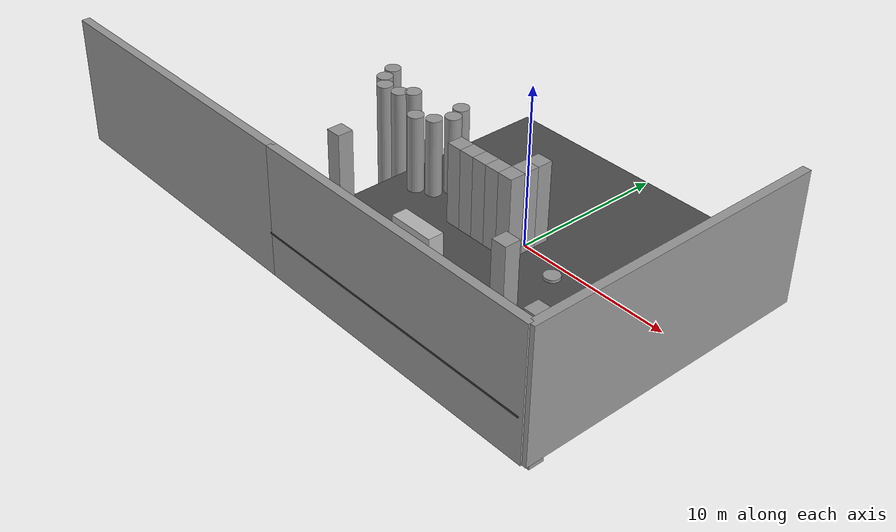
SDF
<sdf version="1.6">
 <model name="MW_world_1_0_0">
  <link name="link_0_0_clone_5_clone_2">
   <pose>-13.4901 1.7321 0.5 0 -0 0</pose>
   <inertial>
    <mass>9.05819</mass>
    <inertia><ixx>62.5018</ixx><ixy>0</ixy><ixz>0</ixz><iyy>62.5018</iyy><iyz>0</iyz><izz>1.13227</izz></inertia>
   </inertial>
   <visual name="visual_0">
    <geometry><cylinder><radius>0.5</radius><length>9.05819</length></cylinder></geometry>
    <material>
     <lighting>1</lighting>
     <script><uri>file://media/materials/scripts/gazebo.material</uri><name>Gazebo/Grey</name></script>
     <ambient>0.3 0.3 0.3 1</ambient>
     <diffuse>0.7 0.7 0.7 1</diffuse>
     <specular>0.01 0.01 0.01 1</specular>
     <emissive>0 0 0 1</emissive>
     <shader type="pixel"/>
    </material>
   </visual>
   <collision name="collision">
    <geometry><cylinder><radius>0.5</radius><length>9.05819</length></cylinder></geometry>
    <surface>
     <friction>
      <ode><mu>1</mu><mu2>1</mu2><fdir1>0 0 0</fdir1><slip1>0</slip1><slip2>0</slip2></ode>
      <torsional>
       <coefficient>1</coefficient>
       <patch_radius>0</patch_radius>
       <surface_radius>0</surface_radius>
       <use_patch_radius>1</use_patch_radius>
       <ode><slip>0</slip></ode>
      </torsional>
     </friction>
     <bounce><restitution_coefficient>0</restitution_coefficient><threshold>1e+06</threshold></bounce>
     <contact>
      <collide_without_contact>0</collide_without_contact>
      <collide_without_contact_bitmask>1</collide_without_contact_bitmask>
      <collide_bitmask>1</collide_bitmask>
      <ode>
       <soft_cfm>0</soft_cfm>
       <soft_erp>0.2</soft_erp>
       <kp>1e+13</kp>
       <kd>1</kd>
       <max_vel>0.01</max_vel>
       <min_depth>0</min_depth>
      </ode>
      <bullet>
       <split_impulse>1</split_impulse>
       <split_impulse_penetration_threshold>-0.01</split_impulse_penetration_threshold>
       <soft_cfm>0</soft_cfm>
       <soft_erp>0.2</soft_erp>
       <kp>1e+13</kp>
       <kd>1</kd>
      </bullet>
     </contact>
    </surface>
   </collision>
  </link>
  <link name="link_0_0_clone_5_clone_2_clone">
   <pose>-13.0181 0.7321 0.5 0 -0 0</pose>
   <inertial>
    <mass>9.05819</mass>
    <inertia><ixx>62.5018</ixx><ixy>0</ixy><ixz>0</ixz><iyy>62.5018</iyy><iyz>0</iyz><izz>1.13227</izz></inertia>
   </inertial>
   <visual name="visual_0">
    <geometry><cylinder><radius>0.5</radius><length>9.05819</length></cylinder></geometry>
    <material>
     <lighting>1</lighting>
     <script><uri>file://media/materials/scripts/gazebo.material</uri><name>Gazebo/Grey</name></script>
     <ambient>0.3 0.3 0.3 1</ambient>
     <diffuse>0.7 0.7 0.7 1</diffuse>
     <specular>0.01 0.01 0.01 1</specular>
     <emissive>0 0 0 1</emissive>
     <shader type="pixel"/>
    </material>
   </visual>
   <collision name="collision">
    <geometry><cylinder><radius>0.5</radius><length>9.05819</length></cylinder></geometry>
    <surface>
     <friction>
      <ode><mu>1</mu><mu2>1</mu2><fdir1>0 0 0</fdir1><slip1>0</slip1><slip2>0</slip2></ode>
      <torsional>
       <coefficient>1</coefficient>
       <patch_radius>0</patch_radius>
       <surface_radius>0</surface_radius>
       <use_patch_radius>1</use_patch_radius>
       <ode><slip>0</slip></ode>
      </torsional>
     </friction>
     <bounce><restitution_coefficient>0</restitution_coefficient><threshold>1e+06</threshold></bounce>
     <contact>
      <collide_without_contact>0</collide_without_contact>
      <collide_without_contact_bitmask>1</collide_without_contact_bitmask>
      <collide_bitmask>1</collide_bitmask>
      <ode>
       <soft_cfm>0</soft_cfm>
       <soft_erp>0.2</soft_erp>
       <kp>1e+13</kp>
       <kd>1</kd>
       <max_vel>0.01</max_vel>
       <min_depth>0</min_depth>
      </ode>
      <bullet>
       <split_impulse>1</split_impulse>
       <split_impulse_penetration_threshold>-0.01</split_impulse_penetration_threshold>
       <soft_cfm>0</soft_cfm>
       <soft_erp>0.2</soft_erp>
       <kp>1e+13</kp>
       <kd>1</kd>
      </bullet>
     </contact>
    </surface>
   </collision>
  </link>
  <link name="link_0_0_clone_5_clone_2_clone_1">
   <pose>-11.0181 0.183167 0.5 0 -0 0</pose>
   <inertial>
    <mass>9.05819</mass>
    <inertia><ixx>62.5018</ixx><ixy>0</ixy><ixz>0</ixz><iyy>62.5018</iyy><iyz>0</iyz><izz>1.13227</izz></inertia>
   </inertial>
   <visual name="visual_0">
    <geometry><cylinder><radius>0.5</radius><length>9.05819</length></cylinder></geometry>
    <material>
     <lighting>1</lighting>
     <script><uri>file://media/materials/scripts/gazebo.material</uri><name>Gazebo/Grey</name></script>
     <ambient>0.3 0.3 0.3 1</ambient>
     <diffuse>0.7 0.7 0.7 1</diffuse>
     <specular>0.01 0.01 0.01 1</specular>
     <emissive>0 0 0 1</emissive>
     <shader type="pixel"/>
    </material>
   </visual>
   <collision name="collision">
    <geometry><cylinder><radius>0.5</radius><length>9.05819</length></cylinder></geometry>
    <surface>
     <friction>
      <ode><mu>1</mu><mu2>1</mu2><fdir1>0 0 0</fdir1><slip1>0</slip1><slip2>0</slip2></ode>
      <torsional>
       <coefficient>1</coefficient>
       <patch_radius>0</patch_radius>
       <surface_radius>0</surface_radius>
       <use_patch_radius>1</use_patch_radius>
       <ode><slip>0</slip></ode>
      </torsional>
     </friction>
     <bounce><restitution_coefficient>0</restitution_coefficient><threshold>1e+06</threshold></bounce>
     <contact>
      <collide_without_contact>0</collide_without_contact>
      <collide_without_contact_bitmask>1</collide_without_contact_bitmask>
      <collide_bitmask>1</collide_bitmask>
      <ode>
       <soft_cfm>0</soft_cfm>
       <soft_erp>0.2</soft_erp>
       <kp>1e+13</kp>
       <kd>1</kd>
       <max_vel>0.01</max_vel>
       <min_depth>0</min_depth>
      </ode>
      <bullet>
       <split_impulse>1</split_impulse>
       <split_impulse_penetration_threshold>-0.01</split_impulse_penetration_threshold>
       <soft_cfm>0</soft_cfm>
       <soft_erp>0.2</soft_erp>
       <kp>1e+13</kp>
       <kd>1</kd>
      </bullet>
     </contact>
    </surface>
   </collision>
  </link>
  <link name="link_0_0_clone_5_clone_2_clone_2">
   <pose>-10.4733 0.78413 0.5 0 -0 0</pose>
   <inertial>
    <mass>9.05819</mass>
    <inertia><ixx>62.5018</ixx><ixy>0</ixy><ixz>0</ixz><iyy>62.5018</iyy><iyz>0</iyz><izz>1.13227</izz></inertia>
   </inertial>
   <visual name="visual_0">
    <geometry><cylinder><radius>0.5</radius><length>9.05819</length></cylinder></geometry>
    <material>
     <lighting>1</lighting>
     <script><uri>file://media/materials/scripts/gazebo.material</uri><name>Gazebo/Grey</name></script>
     <ambient>0.3 0.3 0.3 1</ambient>
     <diffuse>0.7 0.7 0.7 1</diffuse>
     <specular>0.01 0.01 0.01 1</specular>
     <emissive>0 0 0 1</emissive>
     <shader type="pixel"/>
    </material>
   </visual>
   <collision name="collision">
    <geometry><cylinder><radius>0.5</radius><length>9.05819</length></cylinder></geometry>
    <surface>
     <friction>
      <ode><mu>1</mu><mu2>1</mu2><fdir1>0 0 0</fdir1><slip1>0</slip1><slip2>0</slip2></ode>
      <torsional>
       <coefficient>1</coefficient>
       <patch_radius>0</patch_radius>
       <surface_radius>0</surface_radius>
       <use_patch_radius>1</use_patch_radius>
       <ode><slip>0</slip></ode>
      </torsional>
     </friction>
     <bounce><restitution_coefficient>0</restitution_coefficient><threshold>1e+06</threshold></bounce>
     <contact>
      <collide_without_contact>0</collide_without_contact>
      <collide_without_contact_bitmask>1</collide_without_contact_bitmask>
      <collide_bitmask>1</collide_bitmask>
      <ode>
       <soft_cfm>0</soft_cfm>
       <soft_erp>0.2</soft_erp>
       <kp>1e+13</kp>
       <kd>1</kd>
       <max_vel>0.01</max_vel>
       <min_depth>0</min_depth>
      </ode>
      <bullet>
       <split_impulse>1</split_impulse>
       <split_impulse_penetration_threshold>-0.01</split_impulse_penetration_threshold>
       <soft_cfm>0</soft_cfm>
       <soft_erp>0.2</soft_erp>
       <kp>1e+13</kp>
       <kd>1</kd>
      </bullet>
     </contact>
    </surface>
   </collision>
  </link>
  <link name="link_0_0_clone_5_clone_2_clone_4_clone_2">
   <pose>-7.23371 1.64565 0.5 0 -0 0</pose>
   <inertial>
    <mass>9.05819</mass>
    <inertia><ixx>62.5018</ixx><ixy>0</ixy><ixz>0</ixz><iyy>62.5018</iyy><iyz>0</iyz><izz>1.13227</izz></inertia>
   </inertial>
   <visual name="visual_0">
    <geometry><cylinder><radius>0.5</radius><length>9.05819</length></cylinder></geometry>
    <material>
     <lighting>1</lighting>
     <script><uri>file://media/materials/scripts/gazebo.material</uri><name>Gazebo/Grey</name></script>
     <ambient>0.3 0.3 0.3 1</ambient>
     <diffuse>0.7 0.7 0.7 1</diffuse>
     <specular>0.01 0.01 0.01 1</specular>
     <emissive>0 0 0 1</emissive>
     <shader type="pixel"/>
    </material>
   </visual>
   <collision name="collision">
    <geometry><cylinder><radius>0.5</radius><length>9.05819</length></cylinder></geometry>
    <surface>
     <friction>
      <ode><mu>1</mu><mu2>1</mu2><fdir1>0 0 0</fdir1><slip1>0</slip1><slip2>0</slip2></ode>
      <torsional>
       <coefficient>1</coefficient>
       <patch_radius>0</patch_radius>
       <surface_radius>0</surface_radius>
       <use_patch_radius>1</use_patch_radius>
       <ode><slip>0</slip></ode>
      </torsional>
     </friction>
     <bounce><restitution_coefficient>0</restitution_coefficient><threshold>1e+06</threshold></bounce>
     <contact>
      <collide_without_contact>0</collide_without_contact>
      <collide_without_contact_bitmask>1</collide_without_contact_bitmask>
      <collide_bitmask>1</collide_bitmask>
      <ode>
       <soft_cfm>0</soft_cfm>
       <soft_erp>0.2</soft_erp>
       <kp>1e+13</kp>
       <kd>1</kd>
       <max_vel>0.01</max_vel>
       <min_depth>0</min_depth>
      </ode>
      <bullet>
       <split_impulse>1</split_impulse>
       <split_impulse_penetration_threshold>-0.01</split_impulse_penetration_threshold>
       <soft_cfm>0</soft_cfm>
       <soft_erp>0.2</soft_erp>
       <kp>1e+13</kp>
       <kd>1</kd>
      </bullet>
     </contact>
    </surface>
   </collision>
  </link>
  <link name="link_0_0_clone_5_clone_2_clone_4_clone_3">
   <pose>-6.78727 0.64565 0.5 0 -0 0</pose>
   <inertial>
    <mass>9.05819</mass>
    <inertia><ixx>62.5018</ixx><ixy>0</ixy><ixz>0</ixz><iyy>62.5018</iyy><iyz>0</iyz><izz>1.13227</izz></inertia>
   </inertial>
   <visual name="visual_0">
    <geometry><cylinder><radius>0.5</radius><length>9.05819</length></cylinder></geometry>
    <material>
     <lighting>1</lighting>
     <script><uri>file://media/materials/scripts/gazebo.material</uri><name>Gazebo/Grey</name></script>
     <ambient>0.3 0.3 0.3 1</ambient>
     <diffuse>0.7 0.7 0.7 1</diffuse>
     <specular>0.01 0.01 0.01 1</specular>
     <emissive>0 0 0 1</emissive>
     <shader type="pixel"/>
    </material>
   </visual>
   <collision name="collision">
    <geometry><cylinder><radius>0.5</radius><length>9.05819</length></cylinder></geometry>
    <surface>
     <friction>
      <ode><mu>1</mu><mu2>1</mu2><fdir1>0 0 0</fdir1><slip1>0</slip1><slip2>0</slip2></ode>
      <torsional>
       <coefficient>1</coefficient>
       <patch_radius>0</patch_radius>
       <surface_radius>0</surface_radius>
       <use_patch_radius>1</use_patch_radius>
       <ode><slip>0</slip></ode>
      </torsional>
     </friction>
     <bounce><restitution_coefficient>0</restitution_coefficient><threshold>1e+06</threshold></bounce>
     <contact>
      <collide_without_contact>0</collide_without_contact>
      <collide_without_contact_bitmask>1</collide_without_contact_bitmask>
      <collide_bitmask>1</collide_bitmask>
      <ode>
       <soft_cfm>0</soft_cfm>
       <soft_erp>0.2</soft_erp>
       <kp>1e+13</kp>
       <kd>1</kd>
       <max_vel>0.01</max_vel>
       <min_depth>0</min_depth>
      </ode>
      <bullet>
       <split_impulse>1</split_impulse>
       <split_impulse_penetration_threshold>-0.01</split_impulse_penetration_threshold>
       <soft_cfm>0</soft_cfm>
       <soft_erp>0.2</soft_erp>
       <kp>1e+13</kp>
       <kd>1</kd>
      </bullet>
     </contact>
    </surface>
   </collision>
  </link>
  <link name="link_0_0_clone_5_clone_2_clone_4_clone_4">
   <pose>-7.30457 -0.35435 0.5 0 -0 0</pose>
   <inertial>
    <mass>9.05819</mass>
    <inertia><ixx>62.5018</ixx><ixy>0</ixy><ixz>0</ixz><iyy>62.5018</iyy><iyz>0</iyz><izz>1.13227</izz></inertia>
   </inertial>
   <visual name="visual_0">
    <geometry><cylinder><radius>0.5</radius><length>9.05819</length></cylinder></geometry>
    <material>
     <lighting>1</lighting>
     <script><uri>file://media/materials/scripts/gazebo.material</uri><name>Gazebo/Grey</name></script>
     <ambient>0.3 0.3 0.3 1</ambient>
     <diffuse>0.7 0.7 0.7 1</diffuse>
     <specular>0.01 0.01 0.01 1</specular>
     <emissive>0 0 0 1</emissive>
     <shader type="pixel"/>
    </material>
   </visual>
   <collision name="collision">
    <geometry><cylinder><radius>0.5</radius><length>9.05819</length></cylinder></geometry>
    <surface>
     <friction>
      <ode><mu>1</mu><mu2>1</mu2><fdir1>0 0 0</fdir1><slip1>0</slip1><slip2>0</slip2></ode>
      <torsional>
       <coefficient>1</coefficient>
       <patch_radius>0</patch_radius>
       <surface_radius>0</surface_radius>
       <use_patch_radius>1</use_patch_radius>
       <ode><slip>0</slip></ode>
      </torsional>
     </friction>
     <bounce><restitution_coefficient>0</restitution_coefficient><threshold>1e+06</threshold></bounce>
     <contact>
      <collide_without_contact>0</collide_without_contact>
      <collide_without_contact_bitmask>1</collide_without_contact_bitmask>
      <collide_bitmask>1</collide_bitmask>
      <ode>
       <soft_cfm>0</soft_cfm>
       <soft_erp>0.2</soft_erp>
       <kp>1e+13</kp>
       <kd>1</kd>
       <max_vel>0.01</max_vel>
       <min_depth>0</min_depth>
      </ode>
      <bullet>
       <split_impulse>1</split_impulse>
       <split_impulse_penetration_threshold>-0.01</split_impulse_penetration_threshold>
       <soft_cfm>0</soft_cfm>
       <soft_erp>0.2</soft_erp>
       <kp>1e+13</kp>
       <kd>1</kd>
      </bullet>
     </contact>
    </surface>
   </collision>
  </link>
  <link name="link_0_0_clone_5_clone_2_clone_4_clone_5">
   <pose>-8.3199 -0.851548 0.5 0 -0 0</pose>
   <inertial>
    <mass>9.05819</mass>
    <inertia><ixx>62.5018</ixx><ixy>0</ixy><ixz>0</ixz><iyy>62.5018</iyy><iyz>0</iyz><izz>1.13227</izz></inertia>
   </inertial>
   <visual name="visual_0">
    <geometry><cylinder><radius>0.5</radius><length>9.05819</length></cylinder></geometry>
    <material>
     <lighting>1</lighting>
     <script><uri>file://media/materials/scripts/gazebo.material</uri><name>Gazebo/Grey</name></script>
     <ambient>0.3 0.3 0.3 1</ambient>
     <diffuse>0.7 0.7 0.7 1</diffuse>
     <specular>0.01 0.01 0.01 1</specular>
     <emissive>0 0 0 1</emissive>
     <shader type="pixel"/>
    </material>
   </visual>
   <collision name="collision">
    <geometry><cylinder><radius>0.5</radius><length>9.05819</length></cylinder></geometry>
    <surface>
     <friction>
      <ode><mu>1</mu><mu2>1</mu2><fdir1>0 0 0</fdir1><slip1>0</slip1><slip2>0</slip2></ode>
      <torsional>
       <coefficient>1</coefficient>
       <patch_radius>0</patch_radius>
       <surface_radius>0</surface_radius>
       <use_patch_radius>1</use_patch_radius>
       <ode><slip>0</slip></ode>
      </torsional>
     </friction>
     <bounce><restitution_coefficient>0</restitution_coefficient><threshold>1e+06</threshold></bounce>
     <contact>
      <collide_without_contact>0</collide_without_contact>
      <collide_without_contact_bitmask>1</collide_without_contact_bitmask>
      <collide_bitmask>1</collide_bitmask>
      <ode>
       <soft_cfm>0</soft_cfm>
       <soft_erp>0.2</soft_erp>
       <kp>1e+13</kp>
       <kd>1</kd>
       <max_vel>0.01</max_vel>
       <min_depth>0</min_depth>
      </ode>
      <bullet>
       <split_impulse>1</split_impulse>
       <split_impulse_penetration_threshold>-0.01</split_impulse_penetration_threshold>
       <soft_cfm>0</soft_cfm>
       <soft_erp>0.2</soft_erp>
       <kp>1e+13</kp>
       <kd>1</kd>
      </bullet>
     </contact>
    </surface>
   </collision>
  </link>
  <link name="link_0_0_clone_5_clone_2_clone_clone">
   <pose>-12.2132 0.080709 0.5 0 -0 0</pose>
   <inertial>
    <mass>9.05819</mass>
    <inertia><ixx>62.5018</ixx><ixy>0</ixy><ixz>0</ixz><iyy>62.5018</iyy><iyz>0</iyz><izz>1.13227</izz></inertia>
   </inertial>
   <visual name="visual_0">
    <geometry><cylinder><radius>0.5</radius><length>9.05819</length></cylinder></geometry>
    <material>
     <lighting>1</lighting>
     <script><uri>file://media/materials/scripts/gazebo.material</uri><name>Gazebo/Grey</name></script>
     <ambient>0.3 0.3 0.3 1</ambient>
     <diffuse>0.7 0.7 0.7 1</diffuse>
     <specular>0.01 0.01 0.01 1</specular>
     <emissive>0 0 0 1</emissive>
     <shader type="pixel"/>
    </material>
   </visual>
   <collision name="collision">
    <geometry><cylinder><radius>0.5</radius><length>9.05819</length></cylinder></geometry>
    <surface>
     <friction>
      <ode><mu>1</mu><mu2>1</mu2><fdir1>0 0 0</fdir1><slip1>0</slip1><slip2>0</slip2></ode>
      <torsional>
       <coefficient>1</coefficient>
       <patch_radius>0</patch_radius>
       <surface_radius>0</surface_radius>
       <use_patch_radius>1</use_patch_radius>
       <ode><slip>0</slip></ode>
      </torsional>
     </friction>
     <bounce><restitution_coefficient>0</restitution_coefficient><threshold>1e+06</threshold></bounce>
     <contact>
      <collide_without_contact>0</collide_without_contact>
      <collide_without_contact_bitmask>1</collide_without_contact_bitmask>
      <collide_bitmask>1</collide_bitmask>
      <ode>
       <soft_cfm>0</soft_cfm>
       <soft_erp>0.2</soft_erp>
       <kp>1e+13</kp>
       <kd>1</kd>
       <max_vel>0.01</max_vel>
       <min_depth>0</min_depth>
      </ode>
      <bullet>
       <split_impulse>1</split_impulse>
       <split_impulse_penetration_threshold>-0.01</split_impulse_penetration_threshold>
       <soft_cfm>0</soft_cfm>
       <soft_erp>0.2</soft_erp>
       <kp>1e+13</kp>
       <kd>1</kd>
      </bullet>
     </contact>
    </surface>
   </collision>
  </link>
  <link name="link_0_clone_0_clone">
   <pose>-1.0181 -1.2679 0.5 0 -0 0</pose>
   <inertial>
    <mass>9.47467</mass>
    <inertia><ixx>71.6676</ixx><ixy>0</ixy><ixz>0</ixz><iyy>71.6676</iyy><iyz>0</iyz><izz>1.57911</izz></inertia>
   </inertial>
   <visual name="visual">
    <geometry><box><size>1 1 9.47467</size></box></geometry>
    <material>
     <lighting>1</lighting>
     <script><uri>file://media/materials/scripts/gazebo.material</uri><name>Gazebo/Grey</name></script>
     <ambient>0.3 0.3 0.3 1</ambient>
     <diffuse>0.7 0.7 0.7 1</diffuse>
     <specular>0.01 0.01 0.01 1</specular>
     <emissive>0 0 0 1</emissive>
     <shader type="pixel"/>
    </material>
   </visual>
   <collision name="collision">
    <geometry><box><size>1 1 9.47467</size></box></geometry>
    <surface>
     <friction>
      <ode><mu>1</mu><mu2>1</mu2><fdir1>0 0 0</fdir1><slip1>0</slip1><slip2>0</slip2></ode>
      <torsional>
       <coefficient>1</coefficient>
       <patch_radius>0</patch_radius>
       <surface_radius>0</surface_radius>
       <use_patch_radius>1</use_patch_radius>
       <ode><slip>0</slip></ode>
      </torsional>
     </friction>
     <bounce><restitution_coefficient>0</restitution_coefficient><threshold>1e+06</threshold></bounce>
     <contact>
      <collide_without_contact>0</collide_without_contact>
      <collide_without_contact_bitmask>1</collide_without_contact_bitmask>
      <collide_bitmask>1</collide_bitmask>
      <ode>
       <soft_cfm>0</soft_cfm>
       <soft_erp>0.2</soft_erp>
       <kp>1e+13</kp>
       <kd>1</kd>
       <max_vel>0.01</max_vel>
       <min_depth>0</min_depth>
      </ode>
      <bullet>
       <split_impulse>1</split_impulse>
       <split_impulse_penetration_threshold>-0.01</split_impulse_penetration_threshold>
       <soft_cfm>0</soft_cfm>
       <soft_erp>0.2</soft_erp>
       <kp>1e+13</kp>
       <kd>1</kd>
      </bullet>
     </contact>
    </surface>
   </collision>
  </link>
  <link name="link_0_clone_0_clone_0">
   <pose>-2.0181 -1.2679 0.5 0 -0 0</pose>
   <inertial>
    <mass>9.47467</mass>
    <inertia><ixx>71.6676</ixx><ixy>0</ixy><ixz>0</ixz><iyy>71.6676</iyy><iyz>0</iyz><izz>1.57911</izz></inertia>
   </inertial>
   <visual name="visual">
    <geometry><box><size>1 1 9.47467</size></box></geometry>
    <material>
     <lighting>1</lighting>
     <script><uri>file://media/materials/scripts/gazebo.material</uri><name>Gazebo/Grey</name></script>
     <ambient>0.3 0.3 0.3 1</ambient>
     <diffuse>0.7 0.7 0.7 1</diffuse>
     <specular>0.01 0.01 0.01 1</specular>
     <emissive>0 0 0 1</emissive>
     <shader type="pixel"/>
    </material>
   </visual>
   <collision name="collision">
    <geometry><box><size>1 1 9.47467</size></box></geometry>
    <surface>
     <friction>
      <ode><mu>1</mu><mu2>1</mu2><fdir1>0 0 0</fdir1><slip1>0</slip1><slip2>0</slip2></ode>
      <torsional>
       <coefficient>1</coefficient>
       <patch_radius>0</patch_radius>
       <surface_radius>0</surface_radius>
       <use_patch_radius>1</use_patch_radius>
       <ode><slip>0</slip></ode>
      </torsional>
     </friction>
     <bounce><restitution_coefficient>0</restitution_coefficient><threshold>1e+06</threshold></bounce>
     <contact>
      <collide_without_contact>0</collide_without_contact>
      <collide_without_contact_bitmask>1</collide_without_contact_bitmask>
      <collide_bitmask>1</collide_bitmask>
      <ode>
       <soft_cfm>0</soft_cfm>
       <soft_erp>0.2</soft_erp>
       <kp>1e+13</kp>
       <kd>1</kd>
       <max_vel>0.01</max_vel>
       <min_depth>0</min_depth>
      </ode>
      <bullet>
       <split_impulse>1</split_impulse>
       <split_impulse_penetration_threshold>-0.01</split_impulse_penetration_threshold>
       <soft_cfm>0</soft_cfm>
       <soft_erp>0.2</soft_erp>
       <kp>1e+13</kp>
       <kd>1</kd>
      </bullet>
     </contact>
    </surface>
   </collision>
  </link>
  <link name="link_0_clone_0_clone_1">
   <pose>-3.0181 -1.2679 0.5 0 -0 0</pose>
   <inertial>
    <mass>9.47467</mass>
    <inertia><ixx>71.6676</ixx><ixy>0</ixy><ixz>0</ixz><iyy>71.6676</iyy><iyz>0</iyz><izz>1.57911</izz></inertia>
   </inertial>
   <visual name="visual">
    <geometry><box><size>1 1 9.47467</size></box></geometry>
    <material>
     <lighting>1</lighting>
     <script><uri>file://media/materials/scripts/gazebo.material</uri><name>Gazebo/Grey</name></script>
     <ambient>0.3 0.3 0.3 1</ambient>
     <diffuse>0.7 0.7 0.7 1</diffuse>
     <specular>0.01 0.01 0.01 1</specular>
     <emissive>0 0 0 1</emissive>
     <shader type="pixel"/>
    </material>
   </visual>
   <collision name="collision">
    <geometry><box><size>1 1 9.47467</size></box></geometry>
    <surface>
     <friction>
      <ode><mu>1</mu><mu2>1</mu2><fdir1>0 0 0</fdir1><slip1>0</slip1><slip2>0</slip2></ode>
      <torsional>
       <coefficient>1</coefficient>
       <patch_radius>0</patch_radius>
       <surface_radius>0</surface_radius>
       <use_patch_radius>1</use_patch_radius>
       <ode><slip>0</slip></ode>
      </torsional>
     </friction>
     <bounce><restitution_coefficient>0</restitution_coefficient><threshold>1e+06</threshold></bounce>
     <contact>
      <collide_without_contact>0</collide_without_contact>
      <collide_without_contact_bitmask>1</collide_without_contact_bitmask>
      <collide_bitmask>1</collide_bitmask>
      <ode>
       <soft_cfm>0</soft_cfm>
       <soft_erp>0.2</soft_erp>
       <kp>1e+13</kp>
       <kd>1</kd>
       <max_vel>0.01</max_vel>
       <min_depth>0</min_depth>
      </ode>
      <bullet>
       <split_impulse>1</split_impulse>
       <split_impulse_penetration_threshold>-0.01</split_impulse_penetration_threshold>
       <soft_cfm>0</soft_cfm>
       <soft_erp>0.2</soft_erp>
       <kp>1e+13</kp>
       <kd>1</kd>
      </bullet>
     </contact>
    </surface>
   </collision>
  </link>
  <link name="link_0_clone_0_clone_clone">
   <pose>-0.0181 -1.2679 0.5 0 -0 0</pose>
   <inertial>
    <mass>9.47467</mass>
    <inertia><ixx>71.6676</ixx><ixy>0</ixy><ixz>0</ixz><iyy>71.6676</iyy><iyz>0</iyz><izz>1.57911</izz></inertia>
   </inertial>
   <visual name="visual">
    <geometry><box><size>1 1 9.47467</size></box></geometry>
    <material>
     <lighting>1</lighting>
     <script><uri>file://media/materials/scripts/gazebo.material</uri><name>Gazebo/Grey</name></script>
     <ambient>0.3 0.3 0.3 1</ambient>
     <diffuse>0.7 0.7 0.7 1</diffuse>
     <specular>0.01 0.01 0.01 1</specular>
     <emissive>0 0 0 1</emissive>
     <shader type="pixel"/>
    </material>
   </visual>
   <collision name="collision">
    <geometry><box><size>1 1 9.47467</size></box></geometry>
    <surface>
     <friction>
      <ode><mu>1</mu><mu2>1</mu2><fdir1>0 0 0</fdir1><slip1>0</slip1><slip2>0</slip2></ode>
      <torsional>
       <coefficient>1</coefficient>
       <patch_radius>0</patch_radius>
       <surface_radius>0</surface_radius>
       <use_patch_radius>1</use_patch_radius>
       <ode><slip>0</slip></ode>
      </torsional>
     </friction>
     <bounce><restitution_coefficient>0</restitution_coefficient><threshold>1e+06</threshold></bounce>
     <contact>
      <collide_without_contact>0</collide_without_contact>
      <collide_without_contact_bitmask>1</collide_without_contact_bitmask>
      <collide_bitmask>1</collide_bitmask>
      <ode>
       <soft_cfm>0</soft_cfm>
       <soft_erp>0.2</soft_erp>
       <kp>1e+13</kp>
       <kd>1</kd>
       <max_vel>0.01</max_vel>
       <min_depth>0</min_depth>
      </ode>
      <bullet>
       <split_impulse>1</split_impulse>
       <split_impulse_penetration_threshold>-0.01</split_impulse_penetration_threshold>
       <soft_cfm>0</soft_cfm>
       <soft_erp>0.2</soft_erp>
       <kp>1e+13</kp>
       <kd>1</kd>
      </bullet>
     </contact>
    </surface>
   </collision>
  </link>
  <link name="link_0_clone_0_clone_clone_0">
   <pose>-0.0181 -0.2679 0.5 0 -0 0</pose>
   <inertial>
    <mass>9.47467</mass>
    <inertia><ixx>71.6676</ixx><ixy>0</ixy><ixz>0</ixz><iyy>71.6676</iyy><iyz>0</iyz><izz>1.57911</izz></inertia>
   </inertial>
   <visual name="visual">
    <geometry><box><size>1 1 9.47467</size></box></geometry>
    <material>
     <lighting>1</lighting>
     <script><uri>file://media/materials/scripts/gazebo.material</uri><name>Gazebo/Grey</name></script>
     <ambient>0.3 0.3 0.3 1</ambient>
     <diffuse>0.7 0.7 0.7 1</diffuse>
     <specular>0.01 0.01 0.01 1</specular>
     <emissive>0 0 0 1</emissive>
     <shader type="pixel"/>
    </material>
   </visual>
   <collision name="collision">
    <geometry><box><size>1 1 9.47467</size></box></geometry>
    <surface>
     <friction>
      <ode><mu>1</mu><mu2>1</mu2><fdir1>0 0 0</fdir1><slip1>0</slip1><slip2>0</slip2></ode>
      <torsional>
       <coefficient>1</coefficient>
       <patch_radius>0</patch_radius>
       <surface_radius>0</surface_radius>
       <use_patch_radius>1</use_patch_radius>
       <ode><slip>0</slip></ode>
      </torsional>
     </friction>
     <bounce><restitution_coefficient>0</restitution_coefficient><threshold>1e+06</threshold></bounce>
     <contact>
      <collide_without_contact>0</collide_without_contact>
      <collide_without_contact_bitmask>1</collide_without_contact_bitmask>
      <collide_bitmask>1</collide_bitmask>
      <ode>
       <soft_cfm>0</soft_cfm>
       <soft_erp>0.2</soft_erp>
       <kp>1e+13</kp>
       <kd>1</kd>
       <max_vel>0.01</max_vel>
       <min_depth>0</min_depth>
      </ode>
      <bullet>
       <split_impulse>1</split_impulse>
       <split_impulse_penetration_threshold>-0.01</split_impulse_penetration_threshold>
       <soft_cfm>0</soft_cfm>
       <soft_erp>0.2</soft_erp>
       <kp>1e+13</kp>
       <kd>1</kd>
      </bullet>
     </contact>
    </surface>
   </collision>
  </link>
  <link name="link_0_clone_0_clone_clone_1">
   <pose>-0.0181 0.7321 0.5 0 -0 0</pose>
   <inertial>
    <mass>9.47467</mass>
    <inertia><ixx>71.6676</ixx><ixy>0</ixy><ixz>0</ixz><iyy>71.6676</iyy><iyz>0</iyz><izz>1.57911</izz></inertia>
   </inertial>
   <visual name="visual">
    <geometry><box><size>1 1 9.47467</size></box></geometry>
    <material>
     <lighting>1</lighting>
     <script><uri>file://media/materials/scripts/gazebo.material</uri><name>Gazebo/Grey</name></script>
     <ambient>0.3 0.3 0.3 1</ambient>
     <diffuse>0.7 0.7 0.7 1</diffuse>
     <specular>0.01 0.01 0.01 1</specular>
     <emissive>0 0 0 1</emissive>
     <shader type="pixel"/>
    </material>
   </visual>
   <collision name="collision">
    <geometry><box><size>1 1 9.47467</size></box></geometry>
    <surface>
     <friction>
      <ode><mu>1</mu><mu2>1</mu2><fdir1>0 0 0</fdir1><slip1>0</slip1><slip2>0</slip2></ode>
      <torsional>
       <coefficient>1</coefficient>
       <patch_radius>0</patch_radius>
       <surface_radius>0</surface_radius>
       <use_patch_radius>1</use_patch_radius>
       <ode><slip>0</slip></ode>
      </torsional>
     </friction>
     <bounce><restitution_coefficient>0</restitution_coefficient><threshold>1e+06</threshold></bounce>
     <contact>
      <collide_without_contact>0</collide_without_contact>
      <collide_without_contact_bitmask>1</collide_without_contact_bitmask>
      <collide_bitmask>1</collide_bitmask>
      <ode>
       <soft_cfm>0</soft_cfm>
       <soft_erp>0.2</soft_erp>
       <kp>1e+13</kp>
       <kd>1</kd>
       <max_vel>0.01</max_vel>
       <min_depth>0</min_depth>
      </ode>
      <bullet>
       <split_impulse>1</split_impulse>
       <split_impulse_penetration_threshold>-0.01</split_impulse_penetration_threshold>
       <soft_cfm>0</soft_cfm>
       <soft_erp>0.2</soft_erp>
       <kp>1e+13</kp>
       <kd>1</kd>
      </bullet>
     </contact>
    </surface>
   </collision>
  </link>
  <link name="link_0_clone_0_clone_clone_4">
   <pose>-4.0181 -1.2679 0.5 0 -0 0</pose>
   <inertial>
    <mass>9.47467</mass>
    <inertia><ixx>71.6676</ixx><ixy>0</ixy><ixz>0</ixz><iyy>71.6676</iyy><iyz>0</iyz><izz>1.57911</izz></inertia>
   </inertial>
   <visual name="visual">
    <geometry><box><size>1 1 9.47467</size></box></geometry>
    <material>
     <lighting>1</lighting>
     <script><uri>file://media/materials/scripts/gazebo.material</uri><name>Gazebo/Grey</name></script>
     <ambient>0.3 0.3 0.3 1</ambient>
     <diffuse>0.7 0.7 0.7 1</diffuse>
     <specular>0.01 0.01 0.01 1</specular>
     <emissive>0 0 0 1</emissive>
     <shader type="pixel"/>
    </material>
   </visual>
   <collision name="collision">
    <geometry><box><size>1 1 9.47467</size></box></geometry>
    <surface>
     <friction>
      <ode><mu>1</mu><mu2>1</mu2><fdir1>0 0 0</fdir1><slip1>0</slip1><slip2>0</slip2></ode>
      <torsional>
       <coefficient>1</coefficient>
       <patch_radius>0</patch_radius>
       <surface_radius>0</surface_radius>
       <use_patch_radius>1</use_patch_radius>
       <ode><slip>0</slip></ode>
      </torsional>
     </friction>
     <bounce><restitution_coefficient>0</restitution_coefficient><threshold>1e+06</threshold></bounce>
     <contact>
      <collide_without_contact>0</collide_without_contact>
      <collide_without_contact_bitmask>1</collide_without_contact_bitmask>
      <collide_bitmask>1</collide_bitmask>
      <ode>
       <soft_cfm>0</soft_cfm>
       <soft_erp>0.2</soft_erp>
       <kp>1e+13</kp>
       <kd>1</kd>
       <max_vel>0.01</max_vel>
       <min_depth>0</min_depth>
      </ode>
      <bullet>
       <split_impulse>1</split_impulse>
       <split_impulse_penetration_threshold>-0.01</split_impulse_penetration_threshold>
       <soft_cfm>0</soft_cfm>
       <soft_erp>0.2</soft_erp>
       <kp>1e+13</kp>
       <kd>1</kd>
      </bullet>
     </contact>
    </surface>
   </collision>
  </link>
  <link name="link_0_clone_3">
   <pose>3.4613 -1.37265 0.5 0 -0 0</pose>
   <inertial>
    <mass>0.190242</mass>
    <inertia>
     <ixx>0.0124639</ixx>
     <ixy>0</ixy>
     <ixz>0</ixz>
     <iyy>0.0124639</iyy>
     <iyz>0</iyz>
     <izz>0.0237802</izz>
    </inertia>
   </inertial>
   <visual name="visual">
    <geometry><cylinder><radius>0.5</radius><length>0.190241</length></cylinder></geometry>
    <material>
     <lighting>1</lighting>
     <script><uri>file://media/materials/scripts/gazebo.material</uri><name>Gazebo/Grey</name></script>
     <ambient>0.3 0.3 0.3 1</ambient>
     <diffuse>0.7 0.7 0.7 1</diffuse>
     <specular>0.01 0.01 0.01 1</specular>
     <emissive>0 0 0 1</emissive>
     <shader type="pixel"/>
    </material>
   </visual>
   <collision name="collision">
    <geometry><cylinder><radius>0.5</radius><length>0.190241</length></cylinder></geometry>
    <surface>
     <friction>
      <ode><mu>1</mu><mu2>1</mu2><fdir1>0 0 0</fdir1><slip1>0</slip1><slip2>0</slip2></ode>
      <torsional>
       <coefficient>1</coefficient>
       <patch_radius>0</patch_radius>
       <surface_radius>0</surface_radius>
       <use_patch_radius>1</use_patch_radius>
       <ode><slip>0</slip></ode>
      </torsional>
     </friction>
     <bounce><restitution_coefficient>0</restitution_coefficient><threshold>1e+06</threshold></bounce>
     <contact>
      <collide_without_contact>0</collide_without_contact>
      <collide_without_contact_bitmask>1</collide_without_contact_bitmask>
      <collide_bitmask>1</collide_bitmask>
      <ode>
       <soft_cfm>0</soft_cfm>
       <soft_erp>0.2</soft_erp>
       <kp>1e+13</kp>
       <kd>1</kd>
       <max_vel>0.01</max_vel>
       <min_depth>0</min_depth>
      </ode>
      <bullet>
       <split_impulse>1</split_impulse>
       <split_impulse_penetration_threshold>-0.01</split_impulse_penetration_threshold>
       <soft_cfm>0</soft_cfm>
       <soft_erp>0.2</soft_erp>
       <kp>1e+13</kp>
       <kd>1</kd>
      </bullet>
     </contact>
    </surface>
   </collision>
  </link>
  <link name="link_0_clone_clone_0">
   <pose>-9.4519 -5.40294 0.5 0 -0 0</pose>
   <inertial>
    <mass>9.47467</mass>
    <inertia><ixx>71.6676</ixx><ixy>0</ixy><ixz>0</ixz><iyy>71.6676</iyy><iyz>0</iyz><izz>1.57911</izz></inertia>
   </inertial>
   <visual name="visual">
    <geometry><box><size>1 1 9.47467</size></box></geometry>
    <material>
     <lighting>1</lighting>
     <script><uri>file://media/materials/scripts/gazebo.material</uri><name>Gazebo/Grey</name></script>
     <ambient>0.3 0.3 0.3 1</ambient>
     <diffuse>0.7 0.7 0.7 1</diffuse>
     <specular>0.01 0.01 0.01 1</specular>
     <emissive>0 0 0 1</emissive>
     <shader type="pixel"/>
    </material>
   </visual>
   <collision name="collision">
    <geometry><box><size>1 1 9.47467</size></box></geometry>
    <surface>
     <friction>
      <ode><mu>1</mu><mu2>1</mu2><fdir1>0 0 0</fdir1><slip1>0</slip1><slip2>0</slip2></ode>
      <torsional>
       <coefficient>1</coefficient>
       <patch_radius>0</patch_radius>
       <surface_radius>0</surface_radius>
       <use_patch_radius>1</use_patch_radius>
       <ode><slip>0</slip></ode>
      </torsional>
     </friction>
     <bounce><restitution_coefficient>0</restitution_coefficient><threshold>1e+06</threshold></bounce>
     <contact>
      <collide_without_contact>0</collide_without_contact>
      <collide_without_contact_bitmask>1</collide_without_contact_bitmask>
      <collide_bitmask>1</collide_bitmask>
      <ode>
       <soft_cfm>0</soft_cfm>
       <soft_erp>0.2</soft_erp>
       <kp>1e+13</kp>
       <kd>1</kd>
       <max_vel>0.01</max_vel>
       <min_depth>0</min_depth>
      </ode>
      <bullet>
       <split_impulse>1</split_impulse>
       <split_impulse_penetration_threshold>-0.01</split_impulse_penetration_threshold>
       <soft_cfm>0</soft_cfm>
       <soft_erp>0.2</soft_erp>
       <kp>1e+13</kp>
       <kd>1</kd>
      </bullet>
     </contact>
    </surface>
   </collision>
  </link>
  <link name="link_0_clone_clone_0_clone_1">
   <pose>9.21273 -8.35435 0.5 0 -0 0</pose>
   <inertial>
    <mass>9.47467</mass>
    <inertia><ixx>71.6676</ixx><ixy>0</ixy><ixz>0</ixz><iyy>71.6676</iyy><iyz>0</iyz><izz>1.57911</izz></inertia>
   </inertial>
   <visual name="visual">
    <geometry><box><size>1 1 9.47467</size></box></geometry>
    <material>
     <lighting>1</lighting>
     <script><uri>file://media/materials/scripts/gazebo.material</uri><name>Gazebo/Grey</name></script>
     <ambient>0.3 0.3 0.3 1</ambient>
     <diffuse>0.7 0.7 0.7 1</diffuse>
     <specular>0.01 0.01 0.01 1</specular>
     <emissive>0 0 0 1</emissive>
     <shader type="pixel"/>
    </material>
   </visual>
   <collision name="collision">
    <geometry><box><size>1 1 9.47467</size></box></geometry>
    <surface>
     <friction>
      <ode><mu>1</mu><mu2>1</mu2><fdir1>0 0 0</fdir1><slip1>0</slip1><slip2>0</slip2></ode>
      <torsional>
       <coefficient>1</coefficient>
       <patch_radius>0</patch_radius>
       <surface_radius>0</surface_radius>
       <use_patch_radius>1</use_patch_radius>
       <ode><slip>0</slip></ode>
      </torsional>
     </friction>
     <bounce><restitution_coefficient>0</restitution_coefficient><threshold>1e+06</threshold></bounce>
     <contact>
      <collide_without_contact>0</collide_without_contact>
      <collide_without_contact_bitmask>1</collide_without_contact_bitmask>
      <collide_bitmask>1</collide_bitmask>
      <ode>
       <soft_cfm>0</soft_cfm>
       <soft_erp>0.2</soft_erp>
       <kp>1e+13</kp>
       <kd>1</kd>
       <max_vel>0.01</max_vel>
       <min_depth>0</min_depth>
      </ode>
      <bullet>
       <split_impulse>1</split_impulse>
       <split_impulse_penetration_threshold>-0.01</split_impulse_penetration_threshold>
       <soft_cfm>0</soft_cfm>
       <soft_erp>0.2</soft_erp>
       <kp>1e+13</kp>
       <kd>1</kd>
      </bullet>
     </contact>
    </surface>
   </collision>
  </link>
  <link name="link_0_clone_clone_1_clone_1_clone_clone_0">
   <pose>4.21362 -5.67528 0.5 0 -0 0</pose>
   <inertial>
    <mass>9.47467</mass>
    <inertia><ixx>71.6676</ixx><ixy>0</ixy><ixz>0</ixz><iyy>71.6676</iyy><iyz>0</iyz><izz>1.57911</izz></inertia>
   </inertial>
   <visual name="visual">
    <geometry><box><size>1 1 9.47467</size></box></geometry>
    <material>
     <lighting>1</lighting>
     <script><uri>file://media/materials/scripts/gazebo.material</uri><name>Gazebo/Grey</name></script>
     <ambient>0.3 0.3 0.3 1</ambient>
     <diffuse>0.7 0.7 0.7 1</diffuse>
     <specular>0.01 0.01 0.01 1</specular>
     <emissive>0 0 0 1</emissive>
     <shader type="pixel"/>
    </material>
   </visual>
   <collision name="collision">
    <geometry><box><size>1 1 9.47467</size></box></geometry>
    <surface>
     <friction>
      <ode><mu>1</mu><mu2>1</mu2><fdir1>0 0 0</fdir1><slip1>0</slip1><slip2>0</slip2></ode>
      <torsional>
       <coefficient>1</coefficient>
       <patch_radius>0</patch_radius>
       <surface_radius>0</surface_radius>
       <use_patch_radius>1</use_patch_radius>
       <ode><slip>0</slip></ode>
      </torsional>
     </friction>
     <bounce><restitution_coefficient>0</restitution_coefficient><threshold>1e+06</threshold></bounce>
     <contact>
      <collide_without_contact>0</collide_without_contact>
      <collide_without_contact_bitmask>1</collide_without_contact_bitmask>
      <collide_bitmask>1</collide_bitmask>
      <ode>
       <soft_cfm>0</soft_cfm>
       <soft_erp>0.2</soft_erp>
       <kp>1e+13</kp>
       <kd>1</kd>
       <max_vel>0.01</max_vel>
       <min_depth>0</min_depth>
      </ode>
      <bullet>
       <split_impulse>1</split_impulse>
       <split_impulse_penetration_threshold>-0.01</split_impulse_penetration_threshold>
       <soft_cfm>0</soft_cfm>
       <soft_erp>0.2</soft_erp>
       <kp>1e+13</kp>
       <kd>1</kd>
      </bullet>
     </contact>
    </surface>
   </collision>
  </link>
  <model name="asphalt_plane">
   <static>1</static>
   <link name="link">
    <collision name="collision"><geometry><box><size>20 20 0.1</size></box></geometry></collision>
    <visual name="visual">
     <cast_shadows>0</cast_shadows>
     <geometry><box><size>20 20 0.1</size></box></geometry>
     <material>
      <script>
       <uri>model://asphalt_plane/materials/scripts</uri>
       <uri>model://asphalt_plane/materials/textures</uri>
       <name>vrc/asphalt</name>
      </script>
     </material>
    </visual>
   </link>
   <pose>-0.112542 0.000602 0 0 -0 0</pose>
  </model>
  <model name="brick_box_3x1x3_clone">
   <static>1</static>
   <link name="chassis">
    <pose>0 0 1.5 0 -0 0</pose>
    <collision name="collision"><geometry><box><size>3 1 3</size></box></geometry></collision>
    <visual name="visual">
     <geometry><mesh><uri>model://brick_box_3x1x3/meshes/simple_box.dae</uri><scale>3 1 3</scale></mesh></geometry>
     <material>
      <script>
       <uri>model://brick_box_3x1x3/materials/scripts</uri>
       <uri>model://brick_box_3x1x3/materials/textures</uri>
       <name>BrickBox/Diffuse</name>
      </script>
     </material>
    </visual>
   </link>
   <pose>-2.11254 -5.9994 0 0 -0 0</pose>
  </model>
  <model name="brick_box_3x1x3_clone_1_clone">
   <static>1</static>
   <link name="chassis">
    <pose>0 0 1.5 0 -0 0</pose>
    <collision name="collision"><geometry><box><size>3 1 3</size></box></geometry></collision>
    <visual name="visual">
     <geometry><mesh><uri>model://brick_box_3x1x3/meshes/simple_box.dae</uri><scale>3 1 3</scale></mesh></geometry>
     <material>
      <script>
       <uri>model://brick_box_3x1x3/materials/scripts</uri>
       <uri>model://brick_box_3x1x3/materials/textures</uri>
       <name>BrickBox/Diffuse</name>
      </script>
     </material>
    </visual>
   </link>
   <pose>-16.1125 -8.9994 0 0 -0 0</pose>
  </model>
  <model name="grey_wall_mw">
   <link name="link">
    <pose>-8.81665 -2.69351 1.4 0 -0 0</pose>
    <inertial>
     <inertia><ixx>nan</ixx><ixy>0</ixy><ixz>0</ixz><iyy>nan</iyy><iyz>0</iyz><izz>nan</izz></inertia>
     <mass>0</mass>
    </inertial>
    <visual name="visual">
     <cast_shadows>0</cast_shadows>
     <geometry><box><size>20.2056 0.556506 8.63552</size></box></geometry>
     <material>
      <script>
       <uri>model://grey_wall/materials/scripts</uri>
       <uri>model://grey_wall/materials/textures</uri>
       <name>vrc/grey_wall</name>
      </script>
      <ambient>1 1 1 1</ambient>
      <diffuse>1 1 1 1</diffuse>
      <specular>0 0 0 1</specular>
      <emissive>0 0 0 1</emissive>
     </material>
    </visual>
    <collision name="collision">
     <geometry><box><size>20.2056 0.556506 8.63552</size></box></geometry>
     <surface>
      <friction>
       <ode><mu>1</mu><mu2>1</mu2><fdir1>0 0 0</fdir1><slip1>0</slip1><slip2>0</slip2></ode>
       <torsional>
        <coefficient>1</coefficient>
        <patch_radius>0</patch_radius>
        <surface_radius>0</surface_radius>
        <use_patch_radius>1</use_patch_radius>
        <ode><slip>0</slip></ode>
       </torsional>
      </friction>
      <bounce><restitution_coefficient>0</restitution_coefficient><threshold>1e+06</threshold></bounce>
      <contact>
       <collide_without_contact>0</collide_without_contact>
       <collide_without_contact_bitmask>1</collide_without_contact_bitmask>
       <collide_bitmask>1</collide_bitmask>
       <ode>
        <soft_cfm>0</soft_cfm>
        <soft_erp>0.2</soft_erp>
        <kp>1e+13</kp>
        <kd>1</kd>
        <max_vel>0.01</max_vel>
        <min_depth>0</min_depth>
       </ode>
       <bullet>
        <split_impulse>1</split_impulse>
        <split_impulse_penetration_threshold>-0.01</split_impulse_penetration_threshold>
        <soft_cfm>0</soft_cfm>
        <soft_erp>0.2</soft_erp>
        <kp>1e+13</kp>
        <kd>1</kd>
       </bullet>
      </contact>
     </surface>
    </collision>
   </link>
   <static>1</static>
   <pose>-11.1125 -6.9994 0 0 -0 0</pose>
  </model>
  <model name="grey_wall_mw_clone">
   <link name="link">
    <pose>-8.81665 -2.69351 1.4 0 -0 0</pose>
    <inertial>
     <inertia><ixx>nan</ixx><ixy>0</ixy><ixz>0</ixz><iyy>nan</iyy><iyz>0</iyz><izz>nan</izz></inertia>
     <mass>0</mass>
    </inertial>
    <visual name="visual">
     <cast_shadows>0</cast_shadows>
     <geometry><box><size>20.2056 0.556506 8.63552</size></box></geometry>
     <material>
      <script>
       <uri>model://grey_wall/materials/scripts</uri>
       <uri>model://grey_wall/materials/textures</uri>
       <name>vrc/grey_wall</name>
      </script>
      <ambient>1 1 1 1</ambient>
      <diffuse>1 1 1 1</diffuse>
      <specular>0 0 0 1</specular>
      <emissive>0 0 0 1</emissive>
     </material>
    </visual>
    <collision name="collision">
     <geometry><box><size>20.2056 0.556506 8.63552</size></box></geometry>
     <surface>
      <friction>
       <ode><mu>1</mu><mu2>1</mu2><fdir1>0 0 0</fdir1><slip1>0</slip1><slip2>0</slip2></ode>
       <torsional>
        <coefficient>1</coefficient>
        <patch_radius>0</patch_radius>
        <surface_radius>0</surface_radius>
        <use_patch_radius>1</use_patch_radius>
        <ode><slip>0</slip></ode>
       </torsional>
      </friction>
      <bounce><restitution_coefficient>0</restitution_coefficient><threshold>1e+06</threshold></bounce>
      <contact>
       <collide_without_contact>0</collide_without_contact>
       <collide_without_contact_bitmask>1</collide_without_contact_bitmask>
       <collide_bitmask>1</collide_bitmask>
       <ode>
        <soft_cfm>0</soft_cfm>
        <soft_erp>0.2</soft_erp>
        <kp>1e+13</kp>
        <kd>1</kd>
        <max_vel>0.01</max_vel>
        <min_depth>0</min_depth>
       </ode>
       <bullet>
        <split_impulse>1</split_impulse>
        <split_impulse_penetration_threshold>-0.01</split_impulse_penetration_threshold>
        <soft_cfm>0</soft_cfm>
        <soft_erp>0.2</soft_erp>
        <kp>1e+13</kp>
        <kd>1</kd>
       </bullet>
      </contact>
     </surface>
    </collision>
   </link>
   <static>1</static>
   <pose>8.88746 -6.9994 0 0 -0 0</pose>
  </model>
  <model name="grey_wall_mw_clone_0">
   <link name="link">
    <pose>-8.81665 -2.69351 1.4 0 -0 0</pose>
    <inertial>
     <inertia><ixx>nan</ixx><ixy>0</ixy><ixz>0</ixz><iyy>nan</iyy><iyz>0</iyz><izz>nan</izz></inertia>
     <mass>0</mass>
    </inertial>
    <visual name="visual">
     <cast_shadows>0</cast_shadows>
     <geometry><box><size>20.2056 0.556506 8.63552</size></box></geometry>
     <material>
      <script>
       <uri>model://grey_wall/materials/scripts</uri>
       <uri>model://grey_wall/materials/textures</uri>
       <name>vrc/grey_wall</name>
      </script>
      <ambient>1 1 1 1</ambient>
      <diffuse>1 1 1 1</diffuse>
      <specular>0 0 0 1</specular>
      <emissive>0 0 0 1</emissive>
     </material>
    </visual>
    <collision name="collision">
     <geometry><box><size>20.2056 0.556506 8.63552</size></box></geometry>
     <surface>
      <friction>
       <ode><mu>1</mu><mu2>1</mu2><fdir1>0 0 0</fdir1><slip1>0</slip1><slip2>0</slip2></ode>
       <torsional>
        <coefficient>1</coefficient>
        <patch_radius>0</patch_radius>
        <surface_radius>0</surface_radius>
        <use_patch_radius>1</use_patch_radius>
        <ode><slip>0</slip></ode>
       </torsional>
      </friction>
      <bounce><restitution_coefficient>0</restitution_coefficient><threshold>1e+06</threshold></bounce>
      <contact>
       <collide_without_contact>0</collide_without_contact>
       <collide_without_contact_bitmask>1</collide_without_contact_bitmask>
       <collide_bitmask>1</collide_bitmask>
       <ode>
        <soft_cfm>0</soft_cfm>
        <soft_erp>0.2</soft_erp>
        <kp>1e+13</kp>
        <kd>1</kd>
        <max_vel>0.01</max_vel>
        <min_depth>0</min_depth>
       </ode>
       <bullet>
        <split_impulse>1</split_impulse>
        <split_impulse_penetration_threshold>-0.01</split_impulse_penetration_threshold>
        <soft_cfm>0</soft_cfm>
        <soft_erp>0.2</soft_erp>
        <kp>1e+13</kp>
        <kd>1</kd>
       </bullet>
      </contact>
     </surface>
    </collision>
   </link>
   <static>1</static>
   <pose>12.8841 -8.57659 0 0 0 -1.56891</pose>
  </model>
  <static>1</static>
 </model>
</sdf>
